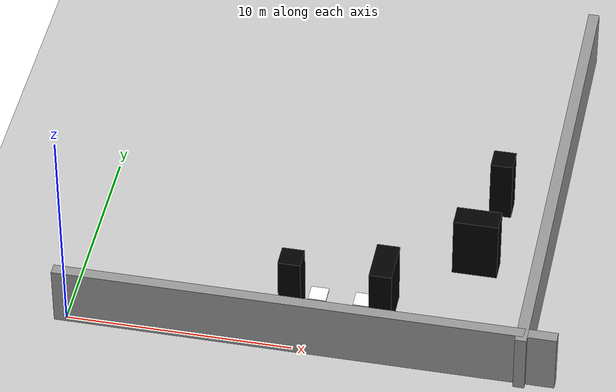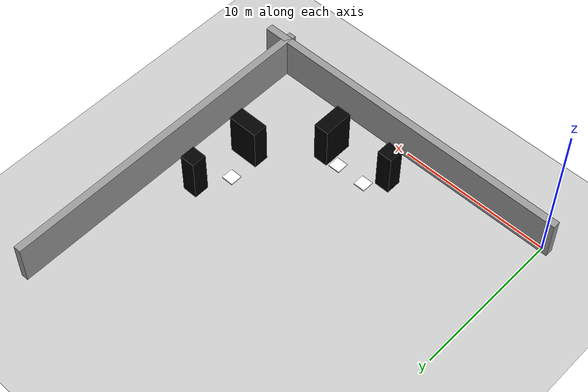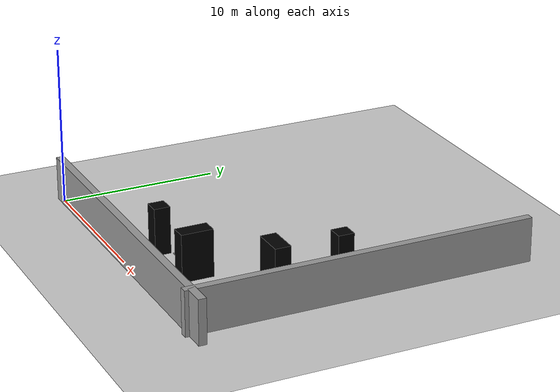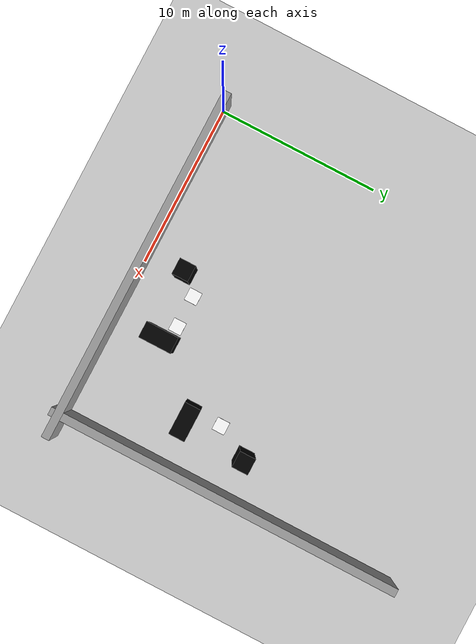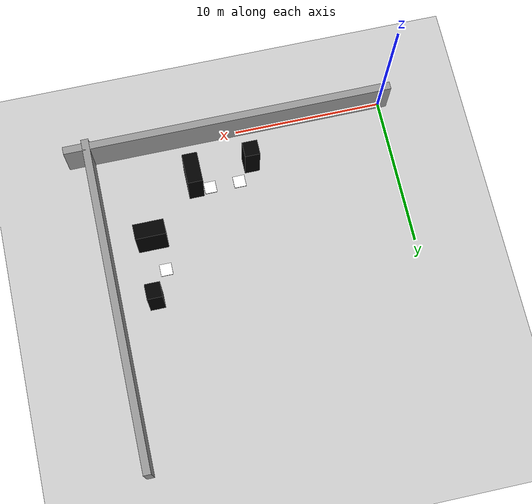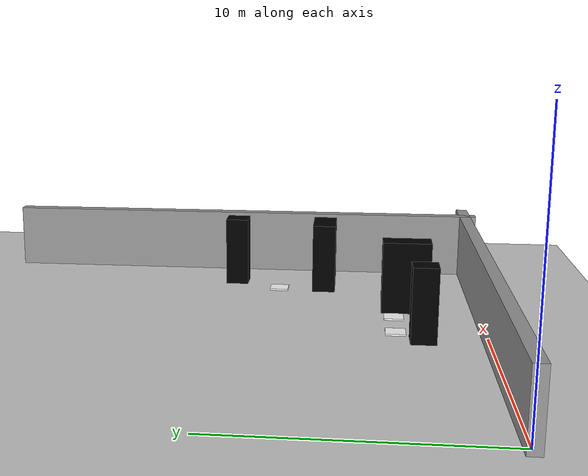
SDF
<sdf version="1.7">
 <world name="default">
  <model name="ground_plane">
   <static>1</static>
   <link name="link">
    <collision name="collision">
     <geometry><plane><normal>0 0 1</normal><size>100 100</size></plane></geometry>
     <surface><friction><ode><mu>100</mu><mu2>50</mu2></ode></friction></surface>
    </collision>
    <visual name="visual">
     <cast_shadows>0</cast_shadows>
     <geometry><plane><normal>0 0 1</normal><size>100 100</size></plane></geometry>
     <material>
      <script><uri>file://media/materials/scripts/gazebo.material</uri><name>Gazebo/Grey</name></script>
     </material>
    </visual>
   </link>
  </model>
  <model name="brick_black_1x2">
   <link name="chassis">
    <pose>0 0 1.5 0 -0 0</pose>
    <inertial>
     <mass>1</mass>
     <inertia><ixx>1</ixx><ixy>0</ixy><ixz>0</ixz><iyy>1</iyy><iyz>0</iyz><izz>1</izz></inertia>
    </inertial>
    <visual name="visual">
     <geometry><mesh><uri>model://brick_box_3x1x3/meshes/simple_box.dae</uri><scale>1 2 3</scale></mesh></geometry>
     <material>
      <script>
       <uri>model://brick_box_3x1x3/materials/scripts</uri>
       <uri>model://brick_box_3x1x3/materials/textures</uri>
       <name>BrickBox/Diffuse</name>
      </script>
      <shader type="vertex"><normal_map>__default__</normal_map></shader>
      <ambient>0 0 0 1</ambient>
      <diffuse>0 0 0 1</diffuse>
      <specular>0 0 0 1</specular>
      <emissive>0 0 0 1</emissive>
      <lighting>1</lighting>
     </material>
    </visual>
    <collision name="collision">
     <geometry><box><size>1 2 3</size></box></geometry>
     <surface>
      <friction>
       <ode><mu>1</mu><mu2>1</mu2><fdir1>0 0 0</fdir1><slip1>0</slip1><slip2>0</slip2></ode>
       <torsional>
        <coefficient>1</coefficient>
        <patch_radius>0</patch_radius>
        <surface_radius>0</surface_radius>
        <use_patch_radius>1</use_patch_radius>
        <ode><slip>0</slip></ode>
       </torsional>
      </friction>
      <bounce><restitution_coefficient>0</restitution_coefficient><threshold>1e+06</threshold></bounce>
      <contact>
       <collide_without_contact>0</collide_without_contact>
       <collide_without_contact_bitmask>1</collide_without_contact_bitmask>
       <collide_bitmask>1</collide_bitmask>
       <ode>
        <soft_cfm>0</soft_cfm>
        <soft_erp>0.2</soft_erp>
        <kp>1e+13</kp>
        <kd>1</kd>
        <max_vel>0.01</max_vel>
        <min_depth>0</min_depth>
       </ode>
       <bullet>
        <split_impulse>1</split_impulse>
        <split_impulse_penetration_threshold>-0.01</split_impulse_penetration_threshold>
        <soft_cfm>0</soft_cfm>
        <soft_erp>0.2</soft_erp>
        <kp>1e+13</kp>
        <kd>1</kd>
       </bullet>
      </contact>
     </surface>
    </collision>
   </link>
   <static>1</static>
   <pose>13.5 3 3e-05 0 -0 0</pose>
  </model>
  <model name="brick_black_1x1_0">
   <link name="chassis">
    <pose>0 0 1.5 0 -0 0</pose>
    <inertial>
     <mass>1</mass>
     <inertia><ixx>1</ixx><ixy>0</ixy><ixz>0</ixz><iyy>1</iyy><iyz>0</iyz><izz>1</izz></inertia>
    </inertial>
    <visual name="visual">
     <geometry><mesh><uri>model://brick_box_3x1x3/meshes/simple_box.dae</uri><scale>1 1 3</scale></mesh></geometry>
     <material>
      <script>
       <uri>model://brick_box_3x1x3/materials/scripts</uri>
       <uri>model://brick_box_3x1x3/materials/textures</uri>
       <name>BrickBox/Diffuse</name>
      </script>
      <shader type="vertex"><normal_map>__default__</normal_map></shader>
      <ambient>0 0 0 1</ambient>
      <diffuse>0 0 0 1</diffuse>
      <specular>0 0 0 1</specular>
      <emissive>0 0 0 1</emissive>
      <lighting>1</lighting>
     </material>
    </visual>
    <collision name="collision">
     <geometry><box><size>1 1 3</size></box></geometry>
     <surface>
      <friction>
       <ode><mu>1</mu><mu2>1</mu2><fdir1>0 0 0</fdir1><slip1>0</slip1><slip2>0</slip2></ode>
       <torsional>
        <coefficient>1</coefficient>
        <patch_radius>0</patch_radius>
        <surface_radius>0</surface_radius>
        <use_patch_radius>1</use_patch_radius>
        <ode><slip>0</slip></ode>
       </torsional>
      </friction>
      <bounce><restitution_coefficient>0</restitution_coefficient><threshold>1e+06</threshold></bounce>
      <contact>
       <collide_without_contact>0</collide_without_contact>
       <collide_without_contact_bitmask>1</collide_without_contact_bitmask>
       <collide_bitmask>1</collide_bitmask>
       <ode>
        <soft_cfm>0</soft_cfm>
        <soft_erp>0.2</soft_erp>
        <kp>1e+13</kp>
        <kd>1</kd>
        <max_vel>0.01</max_vel>
        <min_depth>0</min_depth>
       </ode>
       <bullet>
        <split_impulse>1</split_impulse>
        <split_impulse_penetration_threshold>-0.01</split_impulse_penetration_threshold>
        <soft_cfm>0</soft_cfm>
        <soft_erp>0.2</soft_erp>
        <kp>1e+13</kp>
        <kd>1</kd>
       </bullet>
      </contact>
     </surface>
    </collision>
   </link>
   <static>1</static>
   <pose>9.5 2.5 0 0 -0 0</pose>
  </model>
  <model name="grey_wall_22">
   <link name="link">
    <pose>0 0 1.4 0 -0 0</pose>
    <inertial>
     <mass>1</mass>
     <inertia><ixx>1</ixx><ixy>0</ixy><ixz>0</ixz><iyy>1</iyy><iyz>0</iyz><izz>1</izz></inertia>
    </inertial>
    <visual name="visual">
     <cast_shadows>0</cast_shadows>
     <geometry><box><size>22 0.5 2.8</size></box></geometry>
     <material>
      <script>
       <uri>model://grey_wall/materials/scripts</uri>
       <uri>model://grey_wall/materials/textures</uri>
       <name>vrc/grey_wall</name>
      </script>
      <shader type="vertex"><normal_map>__default__</normal_map></shader>
      <ambient>1 1 1 1</ambient>
      <diffuse>1 1 1 1</diffuse>
      <specular>0 0 0 1</specular>
      <emissive>0 0 0 1</emissive>
     </material>
    </visual>
    <collision name="collision">
     <geometry><box><size>22 0.5 2.8</size></box></geometry>
     <surface>
      <friction>
       <ode><mu>1</mu><mu2>1</mu2><fdir1>0 0 0</fdir1><slip1>0</slip1><slip2>0</slip2></ode>
       <torsional>
        <coefficient>1</coefficient>
        <patch_radius>0</patch_radius>
        <surface_radius>0</surface_radius>
        <use_patch_radius>1</use_patch_radius>
        <ode><slip>0</slip></ode>
       </torsional>
      </friction>
      <bounce><restitution_coefficient>0</restitution_coefficient><threshold>1e+06</threshold></bounce>
      <contact>
       <collide_without_contact>0</collide_without_contact>
       <collide_without_contact_bitmask>1</collide_without_contact_bitmask>
       <collide_bitmask>1</collide_bitmask>
       <ode>
        <soft_cfm>0</soft_cfm>
        <soft_erp>0.2</soft_erp>
        <kp>1e+13</kp>
        <kd>1</kd>
        <max_vel>0.01</max_vel>
        <min_depth>0</min_depth>
       </ode>
       <bullet>
        <split_impulse>1</split_impulse>
        <split_impulse_penetration_threshold>-0.01</split_impulse_penetration_threshold>
        <soft_cfm>0</soft_cfm>
        <soft_erp>0.2</soft_erp>
        <kp>1e+13</kp>
        <kd>1</kd>
       </bullet>
      </contact>
     </surface>
    </collision>
   </link>
   <static>1</static>
   <pose>10.5 0 0 0 -0 0</pose>
  </model>
  <model name="grey_wall_22_2">
   <link name="link">
    <pose>0 0 1.4 0 -0 0</pose>
    <inertial>
     <mass>1</mass>
     <inertia><ixx>1</ixx><ixy>0</ixy><ixz>0</ixz><iyy>1</iyy><iyz>0</iyz><izz>1</izz></inertia>
    </inertial>
    <visual name="visual">
     <cast_shadows>0</cast_shadows>
     <geometry><box><size>22 0.5 2.8</size></box></geometry>
     <material>
      <script>
       <uri>model://grey_wall/materials/scripts</uri>
       <uri>model://grey_wall/materials/textures</uri>
       <name>vrc/grey_wall</name>
      </script>
      <shader type="vertex"><normal_map>__default__</normal_map></shader>
      <ambient>1 1 1 1</ambient>
      <diffuse>1 1 1 1</diffuse>
      <specular>0 0 0 1</specular>
      <emissive>0 0 0 1</emissive>
     </material>
    </visual>
    <collision name="collision">
     <geometry><box><size>22 0.5 2.8</size></box></geometry>
     <surface>
      <friction>
       <ode><mu>1</mu><mu2>1</mu2><fdir1>0 0 0</fdir1><slip1>0</slip1><slip2>0</slip2></ode>
       <torsional>
        <coefficient>1</coefficient>
        <patch_radius>0</patch_radius>
        <surface_radius>0</surface_radius>
        <use_patch_radius>1</use_patch_radius>
        <ode><slip>0</slip></ode>
       </torsional>
      </friction>
      <bounce><restitution_coefficient>0</restitution_coefficient><threshold>1e+06</threshold></bounce>
      <contact>
       <collide_without_contact>0</collide_without_contact>
       <collide_without_contact_bitmask>1</collide_without_contact_bitmask>
       <collide_bitmask>1</collide_bitmask>
       <ode>
        <soft_cfm>0</soft_cfm>
        <soft_erp>0.2</soft_erp>
        <kp>1e+13</kp>
        <kd>1</kd>
        <max_vel>0.01</max_vel>
        <min_depth>0</min_depth>
       </ode>
       <bullet>
        <split_impulse>1</split_impulse>
        <split_impulse_penetration_threshold>-0.01</split_impulse_penetration_threshold>
        <soft_cfm>0</soft_cfm>
        <soft_erp>0.2</soft_erp>
        <kp>1e+13</kp>
        <kd>1</kd>
       </bullet>
      </contact>
     </surface>
    </collision>
   </link>
   <static>1</static>
   <pose>20 10.5 0 0 -0 1.57</pose>
  </model>
  <model name="brick_black_1x2_0">
   <link name="chassis">
    <pose>0 0 1.5 0 -0 0</pose>
    <inertial>
     <mass>1</mass>
     <inertia><ixx>1</ixx><ixy>0</ixy><ixz>0</ixz><iyy>1</iyy><iyz>0</iyz><izz>1</izz></inertia>
    </inertial>
    <visual name="visual">
     <geometry><mesh><uri>model://brick_box_3x1x3/meshes/simple_box.dae</uri><scale>1 2 3</scale></mesh></geometry>
     <material>
      <script>
       <uri>model://brick_box_3x1x3/materials/scripts</uri>
       <uri>model://brick_box_3x1x3/materials/textures</uri>
       <name>BrickBox/Diffuse</name>
      </script>
      <shader type="vertex"><normal_map>__default__</normal_map></shader>
      <ambient>0 0 0 1</ambient>
      <diffuse>0 0 0 1</diffuse>
      <specular>0 0 0 1</specular>
      <emissive>0 0 0 1</emissive>
      <lighting>1</lighting>
     </material>
    </visual>
    <collision name="collision">
     <geometry><box><size>1 2 3</size></box></geometry>
     <surface>
      <friction>
       <ode><mu>1</mu><mu2>1</mu2><fdir1>0 0 0</fdir1><slip1>0</slip1><slip2>0</slip2></ode>
       <torsional>
        <coefficient>1</coefficient>
        <patch_radius>0</patch_radius>
        <surface_radius>0</surface_radius>
        <use_patch_radius>1</use_patch_radius>
        <ode><slip>0</slip></ode>
       </torsional>
      </friction>
      <bounce><restitution_coefficient>0</restitution_coefficient><threshold>1e+06</threshold></bounce>
      <contact>
       <collide_without_contact>0</collide_without_contact>
       <collide_without_contact_bitmask>1</collide_without_contact_bitmask>
       <collide_bitmask>1</collide_bitmask>
       <ode>
        <soft_cfm>0</soft_cfm>
        <soft_erp>0.2</soft_erp>
        <kp>1e+13</kp>
        <kd>1</kd>
        <max_vel>0.01</max_vel>
        <min_depth>0</min_depth>
       </ode>
       <bullet>
        <split_impulse>1</split_impulse>
        <split_impulse_penetration_threshold>-0.01</split_impulse_penetration_threshold>
        <soft_cfm>0</soft_cfm>
        <soft_erp>0.2</soft_erp>
        <kp>1e+13</kp>
        <kd>1</kd>
       </bullet>
      </contact>
     </surface>
    </collision>
   </link>
   <static>1</static>
   <pose>17 6.5 0 0 -0 1.57</pose>
  </model>
  <model name="brick_black_1x1_2">
   <link name="chassis">
    <pose>0 0 1.5 0 -0 0</pose>
    <inertial>
     <mass>1</mass>
     <inertia><ixx>1</ixx><ixy>0</ixy><ixz>0</ixz><iyy>1</iyy><iyz>0</iyz><izz>1</izz></inertia>
    </inertial>
    <visual name="visual">
     <geometry><mesh><uri>model://brick_box_3x1x3/meshes/simple_box.dae</uri><scale>1 1 3</scale></mesh></geometry>
     <material>
      <script>
       <uri>model://brick_box_3x1x3/materials/scripts</uri>
       <uri>model://brick_box_3x1x3/materials/textures</uri>
       <name>BrickBox/Diffuse</name>
      </script>
      <shader type="vertex"><normal_map>__default__</normal_map></shader>
      <ambient>0 0 0 1</ambient>
      <diffuse>0 0 0 1</diffuse>
      <specular>0 0 0 1</specular>
      <emissive>0 0 0 1</emissive>
      <lighting>1</lighting>
     </material>
    </visual>
    <collision name="collision">
     <geometry><box><size>1 1 3</size></box></geometry>
     <surface>
      <friction>
       <ode><mu>1</mu><mu2>1</mu2><fdir1>0 0 0</fdir1><slip1>0</slip1><slip2>0</slip2></ode>
       <torsional>
        <coefficient>1</coefficient>
        <patch_radius>0</patch_radius>
        <surface_radius>0</surface_radius>
        <use_patch_radius>1</use_patch_radius>
        <ode><slip>0</slip></ode>
       </torsional>
      </friction>
      <bounce><restitution_coefficient>0</restitution_coefficient><threshold>1e+06</threshold></bounce>
      <contact>
       <collide_without_contact>0</collide_without_contact>
       <collide_without_contact_bitmask>1</collide_without_contact_bitmask>
       <collide_bitmask>1</collide_bitmask>
       <ode>
        <soft_cfm>0</soft_cfm>
        <soft_erp>0.2</soft_erp>
        <kp>1e+13</kp>
        <kd>1</kd>
        <max_vel>0.01</max_vel>
        <min_depth>0</min_depth>
       </ode>
       <bullet>
        <split_impulse>1</split_impulse>
        <split_impulse_penetration_threshold>-0.01</split_impulse_penetration_threshold>
        <soft_cfm>0</soft_cfm>
        <soft_erp>0.2</soft_erp>
        <kp>1e+13</kp>
        <kd>1</kd>
       </bullet>
      </contact>
     </surface>
    </collision>
   </link>
   <static>1</static>
   <pose>17.5 10.5 0 0 -0 0</pose>
  </model>
  <model name="number1_0">
   <link name="link">
    <inertial>
     <mass>1</mass>
     <inertia><ixx>1</ixx><ixy>0</ixy><ixz>0</ixz><iyy>1</iyy><iyz>0</iyz><izz>1</izz></inertia>
    </inertial>
    <visual name="visual">
     <geometry><mesh><uri>model://number1/meshes/number.dae</uri><scale>1 1 0.1</scale></mesh></geometry>
     <material>
      <script>
       <uri>model://number1/materials/scripts</uri>
       <uri>model://number1/materials/textures</uri>
       <name>Number/One</name>
      </script>
      <shader type="pixel"><normal_map>__default__</normal_map></shader>
      <ambient>1 1 1 1</ambient>
      <diffuse>1 1 1 1</diffuse>
      <specular>0 0 0 1</specular>
      <emissive>0 0 0 1</emissive>
     </material>
    </visual>
   </link>
   <static>1</static>
   <pose>12.5 3.5 0 0 -0 3.14</pose>
  </model>
  <model name="number1_1">
   <link name="link">
    <inertial>
     <mass>1</mass>
     <inertia><ixx>1</ixx><ixy>0</ixy><ixz>0</ixz><iyy>1</iyy><iyz>0</iyz><izz>1</izz></inertia>
    </inertial>
    <visual name="visual">
     <geometry><mesh><uri>model://number1/meshes/number.dae</uri><scale>1 1 0.1</scale></mesh></geometry>
     <material>
      <script>
       <uri>model://number1/materials/scripts</uri>
       <uri>model://number1/materials/textures</uri>
       <name>Number/One</name>
      </script>
      <shader type="pixel"><normal_map>__default__</normal_map></shader>
      <ambient>1 1 1 1</ambient>
      <diffuse>1 1 1 1</diffuse>
      <specular>0 0 0 1</specular>
      <emissive>0 0 0 1</emissive>
     </material>
    </visual>
   </link>
   <static>1</static>
   <pose>10.5 3.5 0 0 -0 3.14</pose>
  </model>
  <model name="number3">
   <link name="link">
    <inertial>
     <mass>1</mass>
     <inertia><ixx>1</ixx><ixy>0</ixy><ixz>0</ixz><iyy>1</iyy><iyz>0</iyz><izz>1</izz></inertia>
    </inertial>
    <visual name="visual">
     <geometry><mesh><uri>model://number1/meshes/number.dae</uri><scale>1 1 0.1</scale></mesh></geometry>
     <material>
      <script>
       <uri>model://number3/materials/scripts</uri>
       <uri>model://number3/materials/textures</uri>
       <name>Number/Three</name>
      </script>
      <shader type="pixel"><normal_map>__default__</normal_map></shader>
      <ambient>1 1 1 1</ambient>
      <diffuse>1 1 1 1</diffuse>
      <specular>0 0 0 1</specular>
      <emissive>0 0 0 1</emissive>
     </material>
    </visual>
   </link>
   <static>1</static>
   <pose>16.5 8.5 0 0 -0 3.14</pose>
  </model>
 </world>
</sdf>
